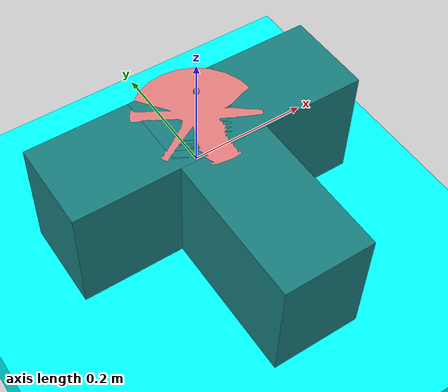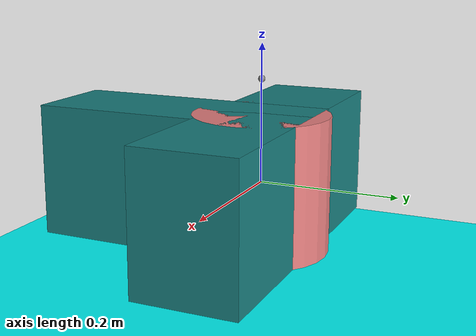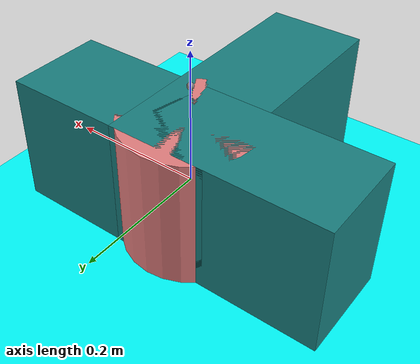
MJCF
<mujoco model="t_push">
  <option timestep="0.02" iterations="1" ls_iterations="5">
    <flag eulerdamp="disable" />
  </option>

  <asset>
    <texture name="blue_grid" type="2d" builtin="checker" rgb1=".02 .14 .44" rgb2=".27 .55 1" width="300" height="300" mark="edge" markrgb="1 1 1"/>
    <material name="blue_grid" texture="blue_grid" texrepeat="1 1" texuniform="true" reflectance=".2"/>
  </asset>

  <default>
    <default class="slider">
      <position kp="10" ctrlrange="-10 10" forcerange="-1000 1000"/>
    </default>
  </default>

  <worldbody>
    <body>
      <geom mass="0" name="floor" pos="0 0 -0.25" condim="3" size="10.0 10.0 0.10" rgba="0 1 1 1" type="box" material="blue_grid"/>
    </body>

    <body name="pusher" pos="0 0 0">
      <joint name="slider_x" damping="4" type="slide" axis="1 0 0" />
      <joint name="slider_y" damping="4" type="slide" axis="0 1 0" />
      <geom name="pusher" type="cylinder" size="0.1 0.1" mass="1" rgba=".9 .5 .5 1" friction="0"/>
      <site pos="0 0 0.15" name="pusher_site"/>
    </body>

    <body name="t_block" pos="0 0 0">
      <joint name="slider_t_x" damping="4" type="slide" axis="1 0 0" />
      <joint name="slider_t_y" damping="4" type="slide" axis="0 1 0" />
      <joint name="t_rotation" damping="1" type="hinge" axis="0 0 1" />
      <!-- T-shaped block composed of two boxes -->
      <!-- Horizontal bar of the T -->
      <geom name="t_horizontal" type="box" size="0.25 0.075 0.1" pos="0 0 0" mass="0.6" rgba=".1 .5 .5 1" friction="0"/>
      <!-- Vertical bar of the T -->
      <geom name="t_vertical" type="box" size="0.075 0.2 0.1" pos="0 -0.125 0" mass="0.4" rgba=".1 .5 .5 1" friction="0"/>
      <site pos="0 0 0.15" name="t_block_site"/>
    </body>
  </worldbody>

  <actuator>
    <velocity name="actuator_pusher_x" joint="slider_x" class="slider" />
    <velocity name="actuator_pusher_y" joint="slider_y" class="slider" />
  </actuator>

  <sensor>
    <framepos name="trace_pusher" objtype="site" objname="pusher_site"/>
    <framepos name="trace_t_block" objtype="site" objname="t_block_site"/>
    <framequat name="t_block_orientation" objtype="body" objname="t_block"/>
  </sensor>

</mujoco>
